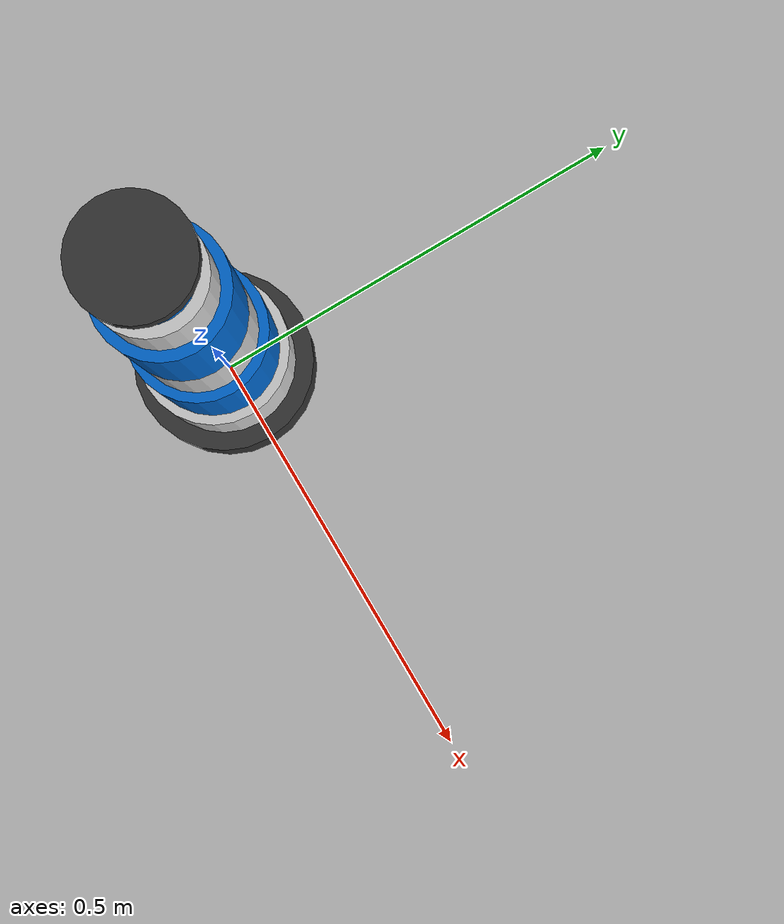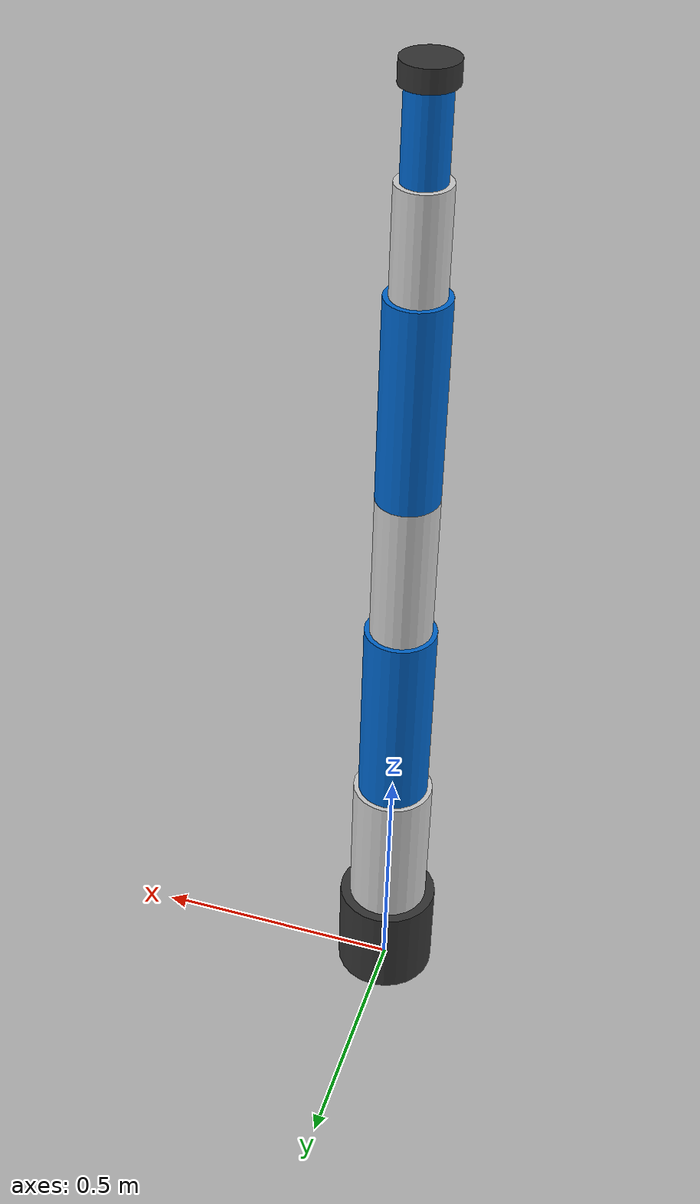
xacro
<?xml version="1.0"?>
<robot xmlns:xacro="http://www.ros.org/wiki/xacro" name="seven_dof_arm">

  <xacro:property name="PI" value="3.14159265359" />
  <xacro:property name="max_effort" value="100.0" />
  <xacro:property name="max_vel" value="2.5" />

  <xacro:property name="base_radius" value="0.1" />
  <xacro:property name="base_length" value="0.2" />

  <material name="dark_gray"><color rgba="0.2 0.2 0.2 1.0"/></material>
  <material name="light_gray"><color rgba="0.8 0.8 0.8 1.0"/></material>
  <material name="blue"><color rgba="0.0 0.4 0.8 1.0"/></material>

  <xacro:macro name="arm_link" params="name length radius color">
    <link name="${name}">
      <visual>
        <origin xyz="0 0 ${length / 2}" rpy="0 0 0"/>
        <geometry>
          <cylinder radius="${radius}" length="${length}"/>
        </geometry>
        <material name="${color}"/>
      </visual>
      <collision>
        <origin xyz="0 0 ${length / 2}" rpy="0 0 0"/>
        <geometry>
          <cylinder radius="${radius}" length="${length}"/>
        </geometry>
      </collision>
    </link>
  </xacro:macro>

  <link name="world"/>

  <link name="base_link">
    <visual>
      <origin xyz="0 0 ${base_length / 2}" rpy="0 0 0"/>
      <geometry>
        <cylinder radius="${base_radius}" length="${base_length}"/>
      </geometry>
      <material name="dark_gray"/>
    </visual>
    <collision>
      <origin xyz="0 0 ${base_length / 2}" rpy="0 0 0"/>
      <geometry>
        <cylinder radius="${base_radius}" length="${base_length}"/>
      </geometry>
    </collision>
  </link>

  <xacro:arm_link name="link_1" length="0.30" radius="0.08" color="light_gray" />
  <xacro:arm_link name="link_2" length="0.40" radius="0.07" color="blue" />
  <xacro:arm_link name="link_3" length="0.30" radius="0.06" color="light_gray" />
  <xacro:arm_link name="link_4" length="0.40" radius="0.06" color="blue" />
  <xacro:arm_link name="link_5" length="0.20" radius="0.05" color="light_gray" />
  <xacro:arm_link name="link_6" length="0.16" radius="0.04" color="blue" />
  <xacro:arm_link name="link_7" length="0.04" radius="0.05" color="dark_gray" />

  <joint name="world_to_base" type="fixed">
    <parent link="world"/>
    <child link="base_link"/>
    <origin xyz="0 0 0" rpy="0 0 0"/>
  </joint>

  <joint name="joint_1" type="revolute">
    <parent link="base_link"/>
    <child link="link_1"/>
    <origin xyz="0 0 ${base_length}" rpy="0 0 0"/>
    <axis xyz="0 0 1"/>
    <limit lower="-${PI}" upper="${PI}" effort="${max_effort}" velocity="${max_vel}"/>
  </joint>

  <joint name="joint_2" type="revolute">
    <parent link="link_1"/>
    <child link="link_2"/>
    <origin xyz="0 0 0.3" rpy="0 0 0"/>
    <axis xyz="0 1 0"/>
    <limit lower="-${2 * PI / 3}" upper="${2 * PI / 3}" effort="${max_effort}" velocity="${max_vel}"/>
  </joint>

  <joint name="joint_3" type="revolute">
    <parent link="link_2"/>
    <child link="link_3"/>
    <origin xyz="0 0 0.4" rpy="0 0 0"/>
    <axis xyz="0 0 1"/>
    <limit lower="-${PI}" upper="${PI}" effort="80.0" velocity="${max_vel}"/>
  </joint>

  <joint name="joint_4" type="revolute">
    <parent link="link_3"/>
    <child link="link_4"/>
    <origin xyz="0 0 0.3" rpy="0 0 0"/>
    <axis xyz="0 1 0"/>
    <limit lower="-${2 * PI / 3}" upper="${2 * PI / 3}" effort="80.0" velocity="${max_vel}"/>
  </joint>

  <joint name="joint_5" type="revolute">
    <parent link="link_4"/>
    <child link="link_5"/>
    <origin xyz="0 0 0.4" rpy="0 0 0"/>
    <axis xyz="0 0 1"/>
    <limit lower="-${PI}" upper="${PI}" effort="40.0" velocity="3.0"/>
  </joint>

  <joint name="joint_6" type="revolute">
    <parent link="link_5"/>
    <child link="link_6"/>
    <origin xyz="0 0 0.2" rpy="0 0 0"/>
    <axis xyz="0 1 0"/>
    <limit lower="-${2 * PI / 3}" upper="${2 * PI / 3}" effort="40.0" velocity="3.0"/>
  </joint>

  <joint name="joint_7" type="revolute">
    <parent link="link_6"/>
    <child link="link_7"/>
    <origin xyz="0 0 0.16" rpy="0 0 0"/>
    <axis xyz="0 0 1"/>
    <limit lower="-${PI}" upper="${PI}" effort="20.0" velocity="4.0"/>
  </joint>

</robot>
